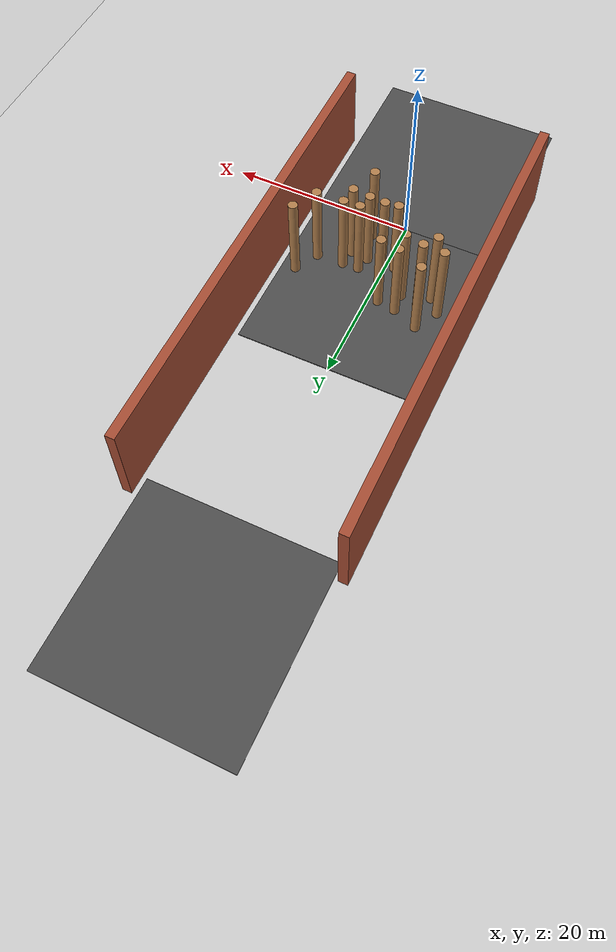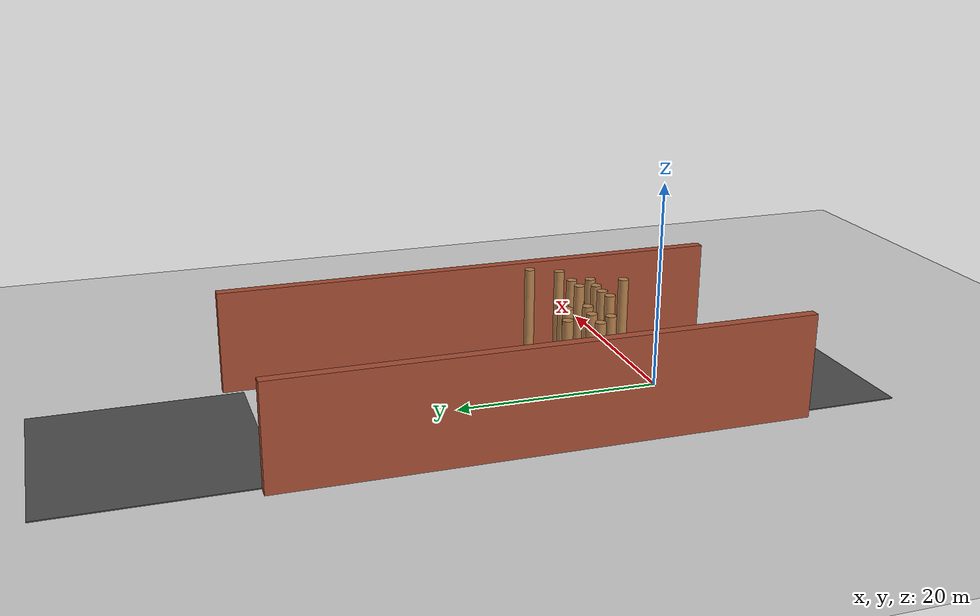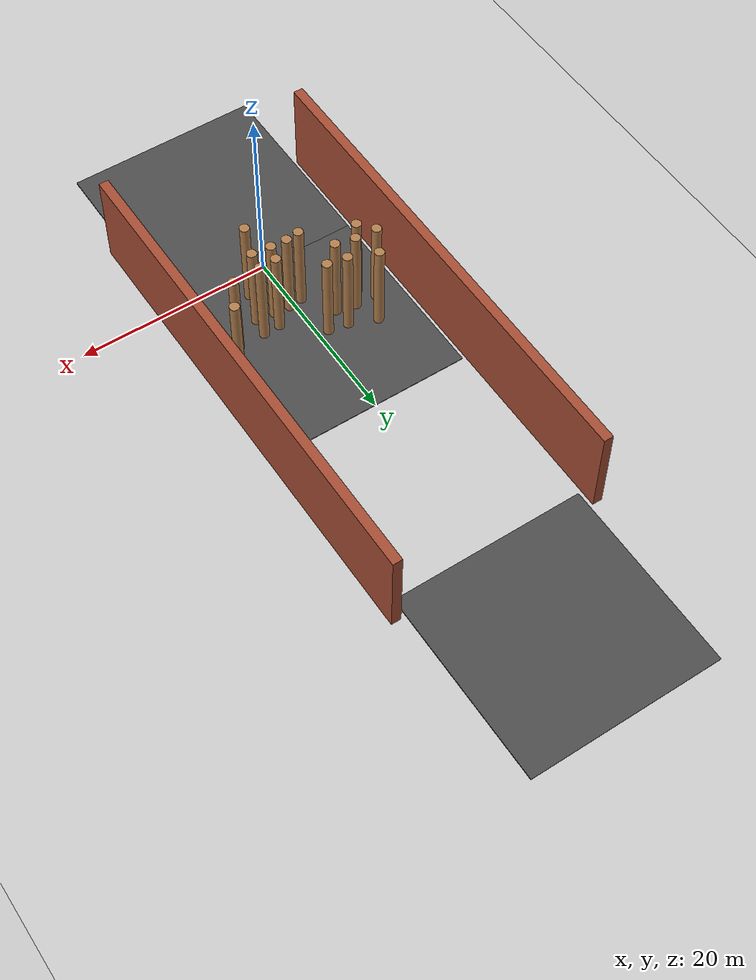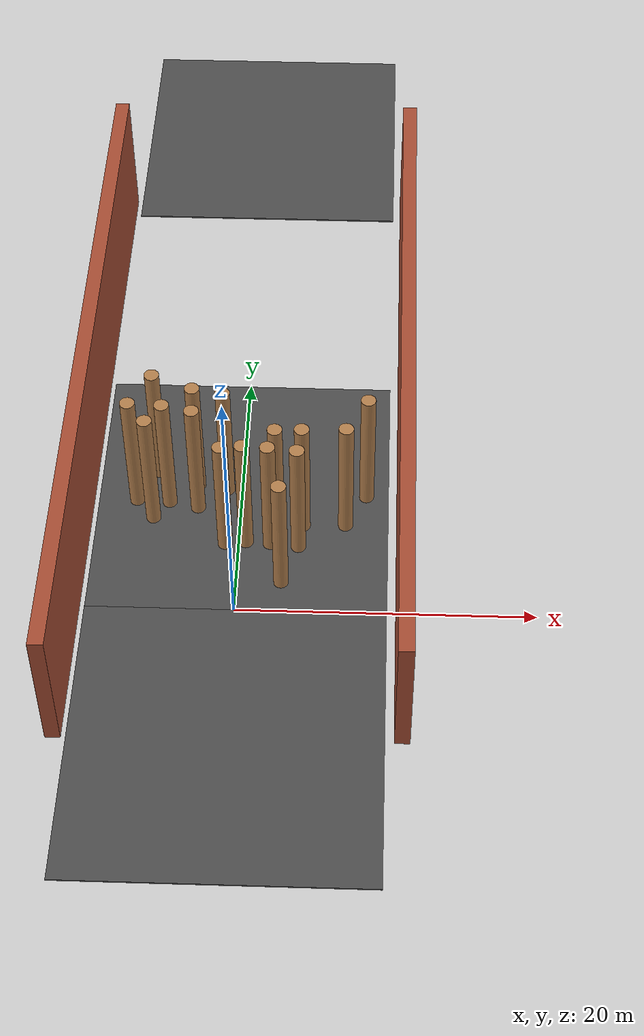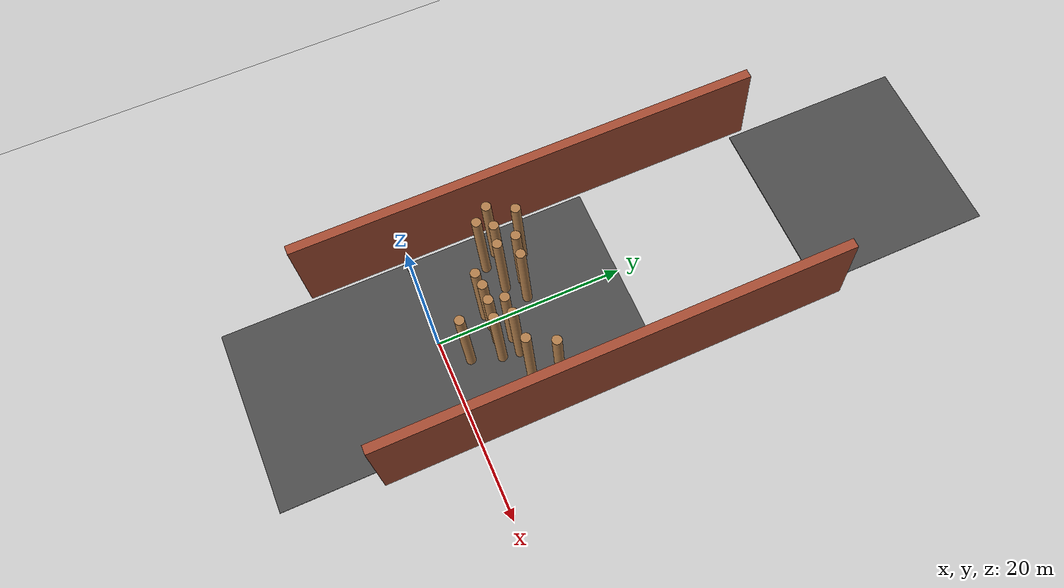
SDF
<sdf version="1.6">
 <world name="default">
  <model name="ground_plane">
   <static>1</static>
   <link name="link">
    <collision name="collision">
     <geometry><plane><normal>0 0 1</normal><size>100 100</size></plane></geometry>
     <surface><friction><ode><mu>100</mu><mu2>50</mu2></ode></friction></surface>
    </collision>
    <visual name="visual">
     <cast_shadows>0</cast_shadows>
     <geometry><plane><normal>0 0 1</normal><size>100 100</size></plane></geometry>
     <material>
      <script><uri>file://media/materials/scripts/gazebo.material</uri><name>Gazebo/Grey</name></script>
     </material>
    </visual>
   </link>
  </model>
  <model name="asphalt_plane_1">
   <static>1</static>
   <link name="link">
    <collision name="collision"><geometry><box><size>20 20 0.1</size></box></geometry></collision>
    <visual name="visual">
     <cast_shadows>0</cast_shadows>
     <geometry><box><size>20 20 0.1</size></box></geometry>
     <material>
      <script>
       <uri>model://asphalt_plane/materials/scripts</uri>
       <uri>model://asphalt_plane/materials/textures</uri>
       <name>vrc/asphalt</name>
      </script>
     </material>
    </visual>
   </link>
   <pose>0.098004 9.97829 0 0 -0 0</pose>
  </model>
  <model name="asphalt_plane_3">
   <static>1</static>
   <link name="link">
    <collision name="collision"><geometry><box><size>20 20 0.1</size></box></geometry></collision>
    <visual name="visual">
     <cast_shadows>0</cast_shadows>
     <geometry><box><size>20 20 0.1</size></box></geometry>
     <material>
      <script>
       <uri>model://asphalt_plane/materials/scripts</uri>
       <uri>model://asphalt_plane/materials/textures</uri>
       <name>vrc/asphalt</name>
      </script>
     </material>
    </visual>
   </link>
   <pose>0.085062 -9.98607 0 0 -0 0</pose>
  </model>
  <model name="train_3">
   <link name="link_0_clone_0_clone_11">
    <pose>4.2784 -11.9007 0.043478 0 -0 0</pose>
    <inertial>
     <mass>1000</mass>
     <inertia><ixx>0.145833</ixx><ixy>0</ixy><ixz>0</ixz><iyy>0.145833</iyy><iyz>0</iyz><izz>0.125</izz></inertia>
    </inertial>
    <visual name="visual">
     <pose>0 0 4.5 0 -0 0</pose>
     <geometry><cylinder><radius>0.5</radius><length>10</length></cylinder></geometry>
     <material>
      <lighting>1</lighting>
      <script><uri>file://media/materials/scripts/gazebo.material</uri><name>Gazebo/WoodFloor</name></script>
      <ambient>0.3 0.3 0.3 1</ambient>
      <diffuse>0.7 0.7 0.7 1</diffuse>
      <specular>0.01 0.01 0.01 1</specular>
      <emissive>0 0 0 1</emissive>
      <shader type="vertex"><normal_map>__default__</normal_map></shader>
     </material>
    </visual>
    <collision name="collision">
     <pose>0 0 4.5 0 -0 0</pose>
     <geometry><cylinder><radius>0.5</radius><length>10</length></cylinder></geometry>
     <surface>
      <friction>
       <ode><mu>1</mu><mu2>1</mu2><fdir1>0 0 0</fdir1><slip1>0</slip1><slip2>0</slip2></ode>
       <torsional>
        <coefficient>1</coefficient>
        <patch_radius>0</patch_radius>
        <surface_radius>0</surface_radius>
        <use_patch_radius>1</use_patch_radius>
        <ode><slip>0</slip></ode>
       </torsional>
      </friction>
      <bounce><restitution_coefficient>0</restitution_coefficient><threshold>1e+06</threshold></bounce>
      <contact>
       <collide_without_contact>0</collide_without_contact>
       <collide_without_contact_bitmask>1</collide_without_contact_bitmask>
       <collide_bitmask>1</collide_bitmask>
       <ode>
        <soft_cfm>0</soft_cfm>
        <soft_erp>0.2</soft_erp>
        <kp>1e+13</kp>
        <kd>1</kd>
        <max_vel>0.01</max_vel>
        <min_depth>0</min_depth>
       </ode>
       <bullet>
        <split_impulse>1</split_impulse>
        <split_impulse_penetration_threshold>-0.01</split_impulse_penetration_threshold>
        <soft_cfm>0</soft_cfm>
        <soft_erp>0.2</soft_erp>
        <kp>1e+13</kp>
        <kd>1</kd>
       </bullet>
      </contact>
     </surface>
    </collision>
   </link>
   <link name="link_0_clone_0_clone_5_clone_1">
    <pose>5.55345 -7.0629 0.043478 0 -0 3e-06</pose>
    <inertial>
     <mass>1000</mass>
     <inertia><ixx>0.145833</ixx><ixy>0</ixy><ixz>0</ixz><iyy>0.145833</iyy><iyz>0</iyz><izz>0.125</izz></inertia>
    </inertial>
    <visual name="visual">
     <pose>0 0 4.5 0 -0 0</pose>
     <geometry><cylinder><radius>0.5</radius><length>10</length></cylinder></geometry>
     <material>
      <lighting>1</lighting>
      <script><uri>file://media/materials/scripts/gazebo.material</uri><name>Gazebo/WoodFloor</name></script>
      <ambient>0.3 0.3 0.3 1</ambient>
      <diffuse>0.7 0.7 0.7 1</diffuse>
      <specular>0.01 0.01 0.01 1</specular>
      <emissive>0 0 0 1</emissive>
      <shader type="vertex"><normal_map>__default__</normal_map></shader>
     </material>
    </visual>
    <collision name="collision">
     <pose>0 0 4.5 0 -0 0</pose>
     <geometry><cylinder><radius>0.5</radius><length>10</length></cylinder></geometry>
     <surface>
      <friction>
       <ode><mu>1</mu><mu2>1</mu2><fdir1>0 0 0</fdir1><slip1>0</slip1><slip2>0</slip2></ode>
       <torsional>
        <coefficient>1</coefficient>
        <patch_radius>0</patch_radius>
        <surface_radius>0</surface_radius>
        <use_patch_radius>1</use_patch_radius>
        <ode><slip>0</slip></ode>
       </torsional>
      </friction>
      <bounce><restitution_coefficient>0</restitution_coefficient><threshold>1e+06</threshold></bounce>
      <contact>
       <collide_without_contact>0</collide_without_contact>
       <collide_without_contact_bitmask>1</collide_without_contact_bitmask>
       <collide_bitmask>1</collide_bitmask>
       <ode>
        <soft_cfm>0</soft_cfm>
        <soft_erp>0.2</soft_erp>
        <kp>1e+13</kp>
        <kd>1</kd>
        <max_vel>0.01</max_vel>
        <min_depth>0</min_depth>
       </ode>
       <bullet>
        <split_impulse>1</split_impulse>
        <split_impulse_penetration_threshold>-0.01</split_impulse_penetration_threshold>
        <soft_cfm>0</soft_cfm>
        <soft_erp>0.2</soft_erp>
        <kp>1e+13</kp>
        <kd>1</kd>
       </bullet>
      </contact>
     </surface>
    </collision>
   </link>
   <link name="link_0_clone_0_clone_5_clone_19_clone_24">
    <pose>-5.97869 -5.13561 0.043478 0 -0 6e-06</pose>
    <inertial>
     <mass>1000</mass>
     <inertia><ixx>0.145833</ixx><ixy>0</ixy><ixz>0</ixz><iyy>0.145833</iyy><iyz>0</iyz><izz>0.125</izz></inertia>
    </inertial>
    <visual name="visual">
     <pose>0 0 4.5 0 -0 0</pose>
     <geometry><cylinder><radius>0.5</radius><length>10</length></cylinder></geometry>
     <material>
      <lighting>1</lighting>
      <script><uri>file://media/materials/scripts/gazebo.material</uri><name>Gazebo/WoodFloor</name></script>
      <ambient>0.3 0.3 0.3 1</ambient>
      <diffuse>0.7 0.7 0.7 1</diffuse>
      <specular>0.01 0.01 0.01 1</specular>
      <emissive>0 0 0 1</emissive>
      <shader type="vertex"><normal_map>__default__</normal_map></shader>
     </material>
    </visual>
    <collision name="collision">
     <pose>0 0 4.5 0 -0 0</pose>
     <geometry><cylinder><radius>0.5</radius><length>10</length></cylinder></geometry>
     <surface>
      <friction>
       <ode><mu>1</mu><mu2>1</mu2><fdir1>0 0 0</fdir1><slip1>0</slip1><slip2>0</slip2></ode>
       <torsional>
        <coefficient>1</coefficient>
        <patch_radius>0</patch_radius>
        <surface_radius>0</surface_radius>
        <use_patch_radius>1</use_patch_radius>
        <ode><slip>0</slip></ode>
       </torsional>
      </friction>
      <bounce><restitution_coefficient>0</restitution_coefficient><threshold>1e+06</threshold></bounce>
      <contact>
       <collide_without_contact>0</collide_without_contact>
       <collide_without_contact_bitmask>1</collide_without_contact_bitmask>
       <collide_bitmask>1</collide_bitmask>
       <ode>
        <soft_cfm>0</soft_cfm>
        <soft_erp>0.2</soft_erp>
        <kp>1e+13</kp>
        <kd>1</kd>
        <max_vel>0.01</max_vel>
        <min_depth>0</min_depth>
       </ode>
       <bullet>
        <split_impulse>1</split_impulse>
        <split_impulse_penetration_threshold>-0.01</split_impulse_penetration_threshold>
        <soft_cfm>0</soft_cfm>
        <soft_erp>0.2</soft_erp>
        <kp>1e+13</kp>
        <kd>1</kd>
       </bullet>
      </contact>
     </surface>
    </collision>
   </link>
   <link name="link_0_clone_0_clone_5_clone_19_clone_25">
    <pose>-4.61157 -2.58866 0.043478 0 -0 6e-06</pose>
    <inertial>
     <mass>1000</mass>
     <inertia><ixx>0.145833</ixx><ixy>0</ixy><ixz>0</ixz><iyy>0.145833</iyy><iyz>0</iyz><izz>0.125</izz></inertia>
    </inertial>
    <visual name="visual">
     <pose>0 0 4.5 0 -0 0</pose>
     <geometry><cylinder><radius>0.5</radius><length>10</length></cylinder></geometry>
     <material>
      <lighting>1</lighting>
      <script><uri>file://media/materials/scripts/gazebo.material</uri><name>Gazebo/WoodFloor</name></script>
      <ambient>0.3 0.3 0.3 1</ambient>
      <diffuse>0.7 0.7 0.7 1</diffuse>
      <specular>0.01 0.01 0.01 1</specular>
      <emissive>0 0 0 1</emissive>
      <shader type="vertex"><normal_map>__default__</normal_map></shader>
     </material>
    </visual>
    <collision name="collision">
     <pose>0 0 4.5 0 -0 0</pose>
     <geometry><cylinder><radius>0.5</radius><length>10</length></cylinder></geometry>
     <surface>
      <friction>
       <ode><mu>1</mu><mu2>1</mu2><fdir1>0 0 0</fdir1><slip1>0</slip1><slip2>0</slip2></ode>
       <torsional>
        <coefficient>1</coefficient>
        <patch_radius>0</patch_radius>
        <surface_radius>0</surface_radius>
        <use_patch_radius>1</use_patch_radius>
        <ode><slip>0</slip></ode>
       </torsional>
      </friction>
      <bounce><restitution_coefficient>0</restitution_coefficient><threshold>1e+06</threshold></bounce>
      <contact>
       <collide_without_contact>0</collide_without_contact>
       <collide_without_contact_bitmask>1</collide_without_contact_bitmask>
       <collide_bitmask>1</collide_bitmask>
       <ode>
        <soft_cfm>0</soft_cfm>
        <soft_erp>0.2</soft_erp>
        <kp>1e+13</kp>
        <kd>1</kd>
        <max_vel>0.01</max_vel>
        <min_depth>0</min_depth>
       </ode>
       <bullet>
        <split_impulse>1</split_impulse>
        <split_impulse_penetration_threshold>-0.01</split_impulse_penetration_threshold>
        <soft_cfm>0</soft_cfm>
        <soft_erp>0.2</soft_erp>
        <kp>1e+13</kp>
        <kd>1</kd>
       </bullet>
      </contact>
     </surface>
    </collision>
   </link>
   <link name="link_0_clone_0_clone_5_clone_19_clone_29">
    <pose>8.45499 -6.94527 0.043478 0 -0 6e-06</pose>
    <inertial>
     <mass>1000</mass>
     <inertia><ixx>0.145833</ixx><ixy>0</ixy><ixz>0</ixz><iyy>0.145833</iyy><iyz>0</iyz><izz>0.125</izz></inertia>
    </inertial>
    <visual name="visual">
     <pose>0 0 4.5 0 -0 0</pose>
     <geometry><cylinder><radius>0.5</radius><length>10</length></cylinder></geometry>
     <material>
      <lighting>1</lighting>
      <script><uri>file://media/materials/scripts/gazebo.material</uri><name>Gazebo/WoodFloor</name></script>
      <ambient>0.3 0.3 0.3 1</ambient>
      <diffuse>0.7 0.7 0.7 1</diffuse>
      <specular>0.01 0.01 0.01 1</specular>
      <emissive>0 0 0 1</emissive>
      <shader type="vertex"><normal_map>__default__</normal_map></shader>
     </material>
    </visual>
    <collision name="collision">
     <pose>0 0 4.5 0 -0 0</pose>
     <geometry><cylinder><radius>0.5</radius><length>10</length></cylinder></geometry>
     <surface>
      <friction>
       <ode><mu>1</mu><mu2>1</mu2><fdir1>0 0 0</fdir1><slip1>0</slip1><slip2>0</slip2></ode>
       <torsional>
        <coefficient>1</coefficient>
        <patch_radius>0</patch_radius>
        <surface_radius>0</surface_radius>
        <use_patch_radius>1</use_patch_radius>
        <ode><slip>0</slip></ode>
       </torsional>
      </friction>
      <bounce><restitution_coefficient>0</restitution_coefficient><threshold>1e+06</threshold></bounce>
      <contact>
       <collide_without_contact>0</collide_without_contact>
       <collide_without_contact_bitmask>1</collide_without_contact_bitmask>
       <collide_bitmask>1</collide_bitmask>
       <ode>
        <soft_cfm>0</soft_cfm>
        <soft_erp>0.2</soft_erp>
        <kp>1e+13</kp>
        <kd>1</kd>
        <max_vel>0.01</max_vel>
        <min_depth>0</min_depth>
       </ode>
       <bullet>
        <split_impulse>1</split_impulse>
        <split_impulse_penetration_threshold>-0.01</split_impulse_penetration_threshold>
        <soft_cfm>0</soft_cfm>
        <soft_erp>0.2</soft_erp>
        <kp>1e+13</kp>
        <kd>1</kd>
       </bullet>
      </contact>
     </surface>
    </collision>
   </link>
   <link name="link_0_clone_0_clone_5_clone_4">
    <pose>-4.72604 -6.65488 0.043478 0 -0 3e-06</pose>
    <inertial>
     <mass>1000</mass>
     <inertia><ixx>0.145833</ixx><ixy>0</ixy><ixz>0</ixz><iyy>0.145833</iyy><iyz>0</iyz><izz>0.125</izz></inertia>
    </inertial>
    <visual name="visual">
     <pose>0 0 4.5 0 -0 0</pose>
     <geometry><cylinder><radius>0.5</radius><length>10</length></cylinder></geometry>
     <material>
      <lighting>1</lighting>
      <script><uri>file://media/materials/scripts/gazebo.material</uri><name>Gazebo/WoodFloor</name></script>
      <ambient>0.3 0.3 0.3 1</ambient>
      <diffuse>0.7 0.7 0.7 1</diffuse>
      <specular>0.01 0.01 0.01 1</specular>
      <emissive>0 0 0 1</emissive>
      <shader type="vertex"><normal_map>__default__</normal_map></shader>
     </material>
    </visual>
    <collision name="collision">
     <pose>0 0 4.5 0 -0 0</pose>
     <geometry><cylinder><radius>0.5</radius><length>10</length></cylinder></geometry>
     <surface>
      <friction>
       <ode><mu>1</mu><mu2>1</mu2><fdir1>0 0 0</fdir1><slip1>0</slip1><slip2>0</slip2></ode>
       <torsional>
        <coefficient>1</coefficient>
        <patch_radius>0</patch_radius>
        <surface_radius>0</surface_radius>
        <use_patch_radius>1</use_patch_radius>
        <ode><slip>0</slip></ode>
       </torsional>
      </friction>
      <bounce><restitution_coefficient>0</restitution_coefficient><threshold>1e+06</threshold></bounce>
      <contact>
       <collide_without_contact>0</collide_without_contact>
       <collide_without_contact_bitmask>1</collide_without_contact_bitmask>
       <collide_bitmask>1</collide_bitmask>
       <ode>
        <soft_cfm>0</soft_cfm>
        <soft_erp>0.2</soft_erp>
        <kp>1e+13</kp>
        <kd>1</kd>
        <max_vel>0.01</max_vel>
        <min_depth>0</min_depth>
       </ode>
       <bullet>
        <split_impulse>1</split_impulse>
        <split_impulse_penetration_threshold>-0.01</split_impulse_penetration_threshold>
        <soft_cfm>0</soft_cfm>
        <soft_erp>0.2</soft_erp>
        <kp>1e+13</kp>
        <kd>1</kd>
       </bullet>
      </contact>
     </surface>
    </collision>
   </link>
   <link name="link_0_clone_0_clone_5_clone_6_clone">
    <pose>0.335435 -8.77026 0.043478 0 -0 6e-06</pose>
    <inertial>
     <mass>1000</mass>
     <inertia><ixx>0.145833</ixx><ixy>0</ixy><ixz>0</ixz><iyy>0.145833</iyy><iyz>0</iyz><izz>0.125</izz></inertia>
    </inertial>
    <visual name="visual">
     <pose>0 0 4.5 0 -0 0</pose>
     <geometry><cylinder><radius>0.5</radius><length>10</length></cylinder></geometry>
     <material>
      <lighting>1</lighting>
      <script><uri>file://media/materials/scripts/gazebo.material</uri><name>Gazebo/WoodFloor</name></script>
      <ambient>0.3 0.3 0.3 1</ambient>
      <diffuse>0.7 0.7 0.7 1</diffuse>
      <specular>0.01 0.01 0.01 1</specular>
      <emissive>0 0 0 1</emissive>
      <shader type="vertex"><normal_map>__default__</normal_map></shader>
     </material>
    </visual>
    <collision name="collision">
     <pose>0 0 4.5 0 -0 0</pose>
     <geometry><cylinder><radius>0.5</radius><length>10</length></cylinder></geometry>
     <surface>
      <friction>
       <ode><mu>1</mu><mu2>1</mu2><fdir1>0 0 0</fdir1><slip1>0</slip1><slip2>0</slip2></ode>
       <torsional>
        <coefficient>1</coefficient>
        <patch_radius>0</patch_radius>
        <surface_radius>0</surface_radius>
        <use_patch_radius>1</use_patch_radius>
        <ode><slip>0</slip></ode>
       </torsional>
      </friction>
      <bounce><restitution_coefficient>0</restitution_coefficient><threshold>1e+06</threshold></bounce>
      <contact>
       <collide_without_contact>0</collide_without_contact>
       <collide_without_contact_bitmask>1</collide_without_contact_bitmask>
       <collide_bitmask>1</collide_bitmask>
       <ode>
        <soft_cfm>0</soft_cfm>
        <soft_erp>0.2</soft_erp>
        <kp>1e+13</kp>
        <kd>1</kd>
        <max_vel>0.01</max_vel>
        <min_depth>0</min_depth>
       </ode>
       <bullet>
        <split_impulse>1</split_impulse>
        <split_impulse_penetration_threshold>-0.01</split_impulse_penetration_threshold>
        <soft_cfm>0</soft_cfm>
        <soft_erp>0.2</soft_erp>
        <kp>1e+13</kp>
        <kd>1</kd>
       </bullet>
      </contact>
     </surface>
    </collision>
   </link>
   <link name="link_0_clone_0_clone_5_clone_6_clone_0">
    <pose>1.74137 -8.59396 0.043478 0 -0 6e-06</pose>
    <inertial>
     <mass>1000</mass>
     <inertia><ixx>0.145833</ixx><ixy>0</ixy><ixz>0</ixz><iyy>0.145833</iyy><iyz>0</iyz><izz>0.125</izz></inertia>
    </inertial>
    <visual name="visual">
     <pose>0 0 4.5 0 -0 0</pose>
     <geometry><cylinder><radius>0.5</radius><length>10</length></cylinder></geometry>
     <material>
      <lighting>1</lighting>
      <script><uri>file://media/materials/scripts/gazebo.material</uri><name>Gazebo/WoodFloor</name></script>
      <ambient>0.3 0.3 0.3 1</ambient>
      <diffuse>0.7 0.7 0.7 1</diffuse>
      <specular>0.01 0.01 0.01 1</specular>
      <emissive>0 0 0 1</emissive>
      <shader type="vertex"><normal_map>__default__</normal_map></shader>
     </material>
    </visual>
    <collision name="collision">
     <pose>0 0 4.5 0 -0 0</pose>
     <geometry><cylinder><radius>0.5</radius><length>10</length></cylinder></geometry>
     <surface>
      <friction>
       <ode><mu>1</mu><mu2>1</mu2><fdir1>0 0 0</fdir1><slip1>0</slip1><slip2>0</slip2></ode>
       <torsional>
        <coefficient>1</coefficient>
        <patch_radius>0</patch_radius>
        <surface_radius>0</surface_radius>
        <use_patch_radius>1</use_patch_radius>
        <ode><slip>0</slip></ode>
       </torsional>
      </friction>
      <bounce><restitution_coefficient>0</restitution_coefficient><threshold>1e+06</threshold></bounce>
      <contact>
       <collide_without_contact>0</collide_without_contact>
       <collide_without_contact_bitmask>1</collide_without_contact_bitmask>
       <collide_bitmask>1</collide_bitmask>
       <ode>
        <soft_cfm>0</soft_cfm>
        <soft_erp>0.2</soft_erp>
        <kp>1e+13</kp>
        <kd>1</kd>
        <max_vel>0.01</max_vel>
        <min_depth>0</min_depth>
       </ode>
       <bullet>
        <split_impulse>1</split_impulse>
        <split_impulse_penetration_threshold>-0.01</split_impulse_penetration_threshold>
        <soft_cfm>0</soft_cfm>
        <soft_erp>0.2</soft_erp>
        <kp>1e+13</kp>
        <kd>1</kd>
       </bullet>
      </contact>
     </surface>
    </collision>
   </link>
   <link name="link_0_clone_0_clone_5_clone_6_clone_1">
    <pose>3.39974 -8.67551 0.043478 0 -0 6e-06</pose>
    <inertial>
     <mass>1000</mass>
     <inertia><ixx>0.145833</ixx><ixy>0</ixy><ixz>0</ixz><iyy>0.145833</iyy><iyz>0</iyz><izz>0.125</izz></inertia>
    </inertial>
    <visual name="visual">
     <pose>0 0 4.5 0 -0 0</pose>
     <geometry><cylinder><radius>0.5</radius><length>10</length></cylinder></geometry>
     <material>
      <lighting>1</lighting>
      <script><uri>file://media/materials/scripts/gazebo.material</uri><name>Gazebo/WoodFloor</name></script>
      <ambient>0.3 0.3 0.3 1</ambient>
      <diffuse>0.7 0.7 0.7 1</diffuse>
      <specular>0.01 0.01 0.01 1</specular>
      <emissive>0 0 0 1</emissive>
      <shader type="vertex"><normal_map>__default__</normal_map></shader>
     </material>
    </visual>
    <collision name="collision">
     <pose>0 0 4.5 0 -0 0</pose>
     <geometry><cylinder><radius>0.5</radius><length>10</length></cylinder></geometry>
     <surface>
      <friction>
       <ode><mu>1</mu><mu2>1</mu2><fdir1>0 0 0</fdir1><slip1>0</slip1><slip2>0</slip2></ode>
       <torsional>
        <coefficient>1</coefficient>
        <patch_radius>0</patch_radius>
        <surface_radius>0</surface_radius>
        <use_patch_radius>1</use_patch_radius>
        <ode><slip>0</slip></ode>
       </torsional>
      </friction>
      <bounce><restitution_coefficient>0</restitution_coefficient><threshold>1e+06</threshold></bounce>
      <contact>
       <collide_without_contact>0</collide_without_contact>
       <collide_without_contact_bitmask>1</collide_without_contact_bitmask>
       <collide_bitmask>1</collide_bitmask>
       <ode>
        <soft_cfm>0</soft_cfm>
        <soft_erp>0.2</soft_erp>
        <kp>1e+13</kp>
        <kd>1</kd>
        <max_vel>0.01</max_vel>
        <min_depth>0</min_depth>
       </ode>
       <bullet>
        <split_impulse>1</split_impulse>
        <split_impulse_penetration_threshold>-0.01</split_impulse_penetration_threshold>
        <soft_cfm>0</soft_cfm>
        <soft_erp>0.2</soft_erp>
        <kp>1e+13</kp>
        <kd>1</kd>
       </bullet>
      </contact>
     </surface>
    </collision>
   </link>
   <link name="link_0_clone_0_clone_5_clone_6_clone_10">
    <pose>9.85089 -4.40278 0.043478 0 -0 6e-06</pose>
    <inertial>
     <mass>1000</mass>
     <inertia><ixx>0.145833</ixx><ixy>0</ixy><ixz>0</ixz><iyy>0.145833</iyy><iyz>0</iyz><izz>0.125</izz></inertia>
    </inertial>
    <visual name="visual">
     <pose>0 0 4.5 0 -0 0</pose>
     <geometry><cylinder><radius>0.5</radius><length>10</length></cylinder></geometry>
     <material>
      <lighting>1</lighting>
      <script><uri>file://media/materials/scripts/gazebo.material</uri><name>Gazebo/WoodFloor</name></script>
      <ambient>0.3 0.3 0.3 1</ambient>
      <diffuse>0.7 0.7 0.7 1</diffuse>
      <specular>0.01 0.01 0.01 1</specular>
      <emissive>0 0 0 1</emissive>
      <shader type="vertex"><normal_map>__default__</normal_map></shader>
     </material>
    </visual>
    <collision name="collision">
     <pose>0 0 4.5 0 -0 0</pose>
     <geometry><cylinder><radius>0.5</radius><length>10</length></cylinder></geometry>
     <surface>
      <friction>
       <ode><mu>1</mu><mu2>1</mu2><fdir1>0 0 0</fdir1><slip1>0</slip1><slip2>0</slip2></ode>
       <torsional>
        <coefficient>1</coefficient>
        <patch_radius>0</patch_radius>
        <surface_radius>0</surface_radius>
        <use_patch_radius>1</use_patch_radius>
        <ode><slip>0</slip></ode>
       </torsional>
      </friction>
      <bounce><restitution_coefficient>0</restitution_coefficient><threshold>1e+06</threshold></bounce>
      <contact>
       <collide_without_contact>0</collide_without_contact>
       <collide_without_contact_bitmask>1</collide_without_contact_bitmask>
       <collide_bitmask>1</collide_bitmask>
       <ode>
        <soft_cfm>0</soft_cfm>
        <soft_erp>0.2</soft_erp>
        <kp>1e+13</kp>
        <kd>1</kd>
        <max_vel>0.01</max_vel>
        <min_depth>0</min_depth>
       </ode>
       <bullet>
        <split_impulse>1</split_impulse>
        <split_impulse_penetration_threshold>-0.01</split_impulse_penetration_threshold>
        <soft_cfm>0</soft_cfm>
        <soft_erp>0.2</soft_erp>
        <kp>1e+13</kp>
        <kd>1</kd>
       </bullet>
      </contact>
     </surface>
    </collision>
   </link>
   <link name="link_0_clone_0_clone_5_clone_6_clone_2">
    <pose>5.31211 -8.8864 0.043478 0 -0 6e-06</pose>
    <inertial>
     <mass>1000</mass>
     <inertia><ixx>0.145833</ixx><ixy>0</ixy><ixz>0</ixz><iyy>0.145833</iyy><iyz>0</iyz><izz>0.125</izz></inertia>
    </inertial>
    <visual name="visual">
     <pose>0 0 4.5 0 -0 0</pose>
     <geometry><cylinder><radius>0.5</radius><length>10</length></cylinder></geometry>
     <material>
      <lighting>1</lighting>
      <script><uri>file://media/materials/scripts/gazebo.material</uri><name>Gazebo/WoodFloor</name></script>
      <ambient>0.3 0.3 0.3 1</ambient>
      <diffuse>0.7 0.7 0.7 1</diffuse>
      <specular>0.01 0.01 0.01 1</specular>
      <emissive>0 0 0 1</emissive>
      <shader type="vertex"><normal_map>__default__</normal_map></shader>
     </material>
    </visual>
    <collision name="collision">
     <pose>0 0 4.5 0 -0 0</pose>
     <geometry><cylinder><radius>0.5</radius><length>10</length></cylinder></geometry>
     <surface>
      <friction>
       <ode><mu>1</mu><mu2>1</mu2><fdir1>0 0 0</fdir1><slip1>0</slip1><slip2>0</slip2></ode>
       <torsional>
        <coefficient>1</coefficient>
        <patch_radius>0</patch_radius>
        <surface_radius>0</surface_radius>
        <use_patch_radius>1</use_patch_radius>
        <ode><slip>0</slip></ode>
       </torsional>
      </friction>
      <bounce><restitution_coefficient>0</restitution_coefficient><threshold>1e+06</threshold></bounce>
      <contact>
       <collide_without_contact>0</collide_without_contact>
       <collide_without_contact_bitmask>1</collide_without_contact_bitmask>
       <collide_bitmask>1</collide_bitmask>
       <ode>
        <soft_cfm>0</soft_cfm>
        <soft_erp>0.2</soft_erp>
        <kp>1e+13</kp>
        <kd>1</kd>
        <max_vel>0.01</max_vel>
        <min_depth>0</min_depth>
       </ode>
       <bullet>
        <split_impulse>1</split_impulse>
        <split_impulse_penetration_threshold>-0.01</split_impulse_penetration_threshold>
        <soft_cfm>0</soft_cfm>
        <soft_erp>0.2</soft_erp>
        <kp>1e+13</kp>
        <kd>1</kd>
       </bullet>
      </contact>
     </surface>
    </collision>
   </link>
   <link name="link_0_clone_0_clone_5_clone_6_clone_3">
    <pose>3.79882 -7.14652 0.043478 0 -0 6e-06</pose>
    <inertial>
     <mass>1000</mass>
     <inertia><ixx>0.145833</ixx><ixy>0</ixy><ixz>0</ixz><iyy>0.145833</iyy><iyz>0</iyz><izz>0.125</izz></inertia>
    </inertial>
    <visual name="visual">
     <pose>0 0 4.5 0 -0 0</pose>
     <geometry><cylinder><radius>0.5</radius><length>10</length></cylinder></geometry>
     <material>
      <lighting>1</lighting>
      <script><uri>file://media/materials/scripts/gazebo.material</uri><name>Gazebo/WoodFloor</name></script>
      <ambient>0.3 0.3 0.3 1</ambient>
      <diffuse>0.7 0.7 0.7 1</diffuse>
      <specular>0.01 0.01 0.01 1</specular>
      <emissive>0 0 0 1</emissive>
      <shader type="vertex"><normal_map>__default__</normal_map></shader>
     </material>
    </visual>
    <collision name="collision">
     <pose>0 0 4.5 0 -0 0</pose>
     <geometry><cylinder><radius>0.5</radius><length>10</length></cylinder></geometry>
     <surface>
      <friction>
       <ode><mu>1</mu><mu2>1</mu2><fdir1>0 0 0</fdir1><slip1>0</slip1><slip2>0</slip2></ode>
       <torsional>
        <coefficient>1</coefficient>
        <patch_radius>0</patch_radius>
        <surface_radius>0</surface_radius>
        <use_patch_radius>1</use_patch_radius>
        <ode><slip>0</slip></ode>
       </torsional>
      </friction>
      <bounce><restitution_coefficient>0</restitution_coefficient><threshold>1e+06</threshold></bounce>
      <contact>
       <collide_without_contact>0</collide_without_contact>
       <collide_without_contact_bitmask>1</collide_without_contact_bitmask>
       <collide_bitmask>1</collide_bitmask>
       <ode>
        <soft_cfm>0</soft_cfm>
        <soft_erp>0.2</soft_erp>
        <kp>1e+13</kp>
        <kd>1</kd>
        <max_vel>0.01</max_vel>
        <min_depth>0</min_depth>
       </ode>
       <bullet>
        <split_impulse>1</split_impulse>
        <split_impulse_penetration_threshold>-0.01</split_impulse_penetration_threshold>
        <soft_cfm>0</soft_cfm>
        <soft_erp>0.2</soft_erp>
        <kp>1e+13</kp>
        <kd>1</kd>
       </bullet>
      </contact>
     </surface>
    </collision>
   </link>
   <link name="link_0_clone_0_clone_5_clone_6_clone_5">
    <pose>-1.72604 -5.68714 0.043478 0 -0 6e-06</pose>
    <inertial>
     <mass>1000</mass>
     <inertia><ixx>0.145833</ixx><ixy>0</ixy><ixz>0</ixz><iyy>0.145833</iyy><iyz>0</iyz><izz>0.125</izz></inertia>
    </inertial>
    <visual name="visual">
     <pose>0 0 4.5 0 -0 0</pose>
     <geometry><cylinder><radius>0.5</radius><length>10</length></cylinder></geometry>
     <material>
      <lighting>1</lighting>
      <script><uri>file://media/materials/scripts/gazebo.material</uri><name>Gazebo/WoodFloor</name></script>
      <ambient>0.3 0.3 0.3 1</ambient>
      <diffuse>0.7 0.7 0.7 1</diffuse>
      <specular>0.01 0.01 0.01 1</specular>
      <emissive>0 0 0 1</emissive>
      <shader type="vertex"><normal_map>__default__</normal_map></shader>
     </material>
    </visual>
    <collision name="collision">
     <pose>0 0 4.5 0 -0 0</pose>
     <geometry><cylinder><radius>0.5</radius><length>10</length></cylinder></geometry>
     <surface>
      <friction>
       <ode><mu>1</mu><mu2>1</mu2><fdir1>0 0 0</fdir1><slip1>0</slip1><slip2>0</slip2></ode>
       <torsional>
        <coefficient>1</coefficient>
        <patch_radius>0</patch_radius>
        <surface_radius>0</surface_radius>
        <use_patch_radius>1</use_patch_radius>
        <ode><slip>0</slip></ode>
       </torsional>
      </friction>
      <bounce><restitution_coefficient>0</restitution_coefficient><threshold>1e+06</threshold></bounce>
      <contact>
       <collide_without_contact>0</collide_without_contact>
       <collide_without_contact_bitmask>1</collide_without_contact_bitmask>
       <collide_bitmask>1</collide_bitmask>
       <ode>
        <soft_cfm>0</soft_cfm>
        <soft_erp>0.2</soft_erp>
        <kp>1e+13</kp>
        <kd>1</kd>
        <max_vel>0.01</max_vel>
        <min_depth>0</min_depth>
       </ode>
       <bullet>
        <split_impulse>1</split_impulse>
        <split_impulse_penetration_threshold>-0.01</split_impulse_penetration_threshold>
        <soft_cfm>0</soft_cfm>
        <soft_erp>0.2</soft_erp>
        <kp>1e+13</kp>
        <kd>1</kd>
       </bullet>
      </contact>
     </surface>
    </collision>
   </link>
   <link name="link_0_clone_0_clone_5_clone_6_clone_6">
    <pose>-1.84506 -3.70574 0.043478 0 -0 6e-06</pose>
    <inertial>
     <mass>1000</mass>
     <inertia><ixx>0.145833</ixx><ixy>0</ixy><ixz>0</ixz><iyy>0.145833</iyy><iyz>0</iyz><izz>0.125</izz></inertia>
    </inertial>
    <visual name="visual">
     <pose>0 0 4.5 0 -0 0</pose>
     <geometry><cylinder><radius>0.5</radius><length>10</length></cylinder></geometry>
     <material>
      <lighting>1</lighting>
      <script><uri>file://media/materials/scripts/gazebo.material</uri><name>Gazebo/WoodFloor</name></script>
      <ambient>0.3 0.3 0.3 1</ambient>
      <diffuse>0.7 0.7 0.7 1</diffuse>
      <specular>0.01 0.01 0.01 1</specular>
      <emissive>0 0 0 1</emissive>
      <shader type="vertex"><normal_map>__default__</normal_map></shader>
     </material>
    </visual>
    <collision name="collision">
     <pose>0 0 4.5 0 -0 0</pose>
     <geometry><cylinder><radius>0.5</radius><length>10</length></cylinder></geometry>
     <surface>
      <friction>
       <ode><mu>1</mu><mu2>1</mu2><fdir1>0 0 0</fdir1><slip1>0</slip1><slip2>0</slip2></ode>
       <torsional>
        <coefficient>1</coefficient>
        <patch_radius>0</patch_radius>
        <surface_radius>0</surface_radius>
        <use_patch_radius>1</use_patch_radius>
        <ode><slip>0</slip></ode>
       </torsional>
      </friction>
      <bounce><restitution_coefficient>0</restitution_coefficient><threshold>1e+06</threshold></bounce>
      <contact>
       <collide_without_contact>0</collide_without_contact>
       <collide_without_contact_bitmask>1</collide_without_contact_bitmask>
       <collide_bitmask>1</collide_bitmask>
       <ode>
        <soft_cfm>0</soft_cfm>
        <soft_erp>0.2</soft_erp>
        <kp>1e+13</kp>
        <kd>1</kd>
        <max_vel>0.01</max_vel>
        <min_depth>0</min_depth>
       </ode>
       <bullet>
        <split_impulse>1</split_impulse>
        <split_impulse_penetration_threshold>-0.01</split_impulse_penetration_threshold>
        <soft_cfm>0</soft_cfm>
        <soft_erp>0.2</soft_erp>
        <kp>1e+13</kp>
        <kd>1</kd>
       </bullet>
      </contact>
     </surface>
    </collision>
   </link>
   <link name="link_0_clone_0_clone_5_clone_6_clone_8">
    <pose>-3.72604 -5.24681 0.043478 0 -0 6e-06</pose>
    <inertial>
     <mass>1000</mass>
     <inertia><ixx>0.145833</ixx><ixy>0</ixy><ixz>0</ixz><iyy>0.145833</iyy><iyz>0</iyz><izz>0.125</izz></inertia>
    </inertial>
    <visual name="visual">
     <pose>0 0 4.5 0 -0 0</pose>
     <geometry><cylinder><radius>0.5</radius><length>10</length></cylinder></geometry>
     <material>
      <lighting>1</lighting>
      <script><uri>file://media/materials/scripts/gazebo.material</uri><name>Gazebo/WoodFloor</name></script>
      <ambient>0.3 0.3 0.3 1</ambient>
      <diffuse>0.7 0.7 0.7 1</diffuse>
      <specular>0.01 0.01 0.01 1</specular>
      <emissive>0 0 0 1</emissive>
      <shader type="vertex"><normal_map>__default__</normal_map></shader>
     </material>
    </visual>
    <collision name="collision">
     <pose>0 0 4.5 0 -0 0</pose>
     <geometry><cylinder><radius>0.5</radius><length>10</length></cylinder></geometry>
     <surface>
      <friction>
       <ode><mu>1</mu><mu2>1</mu2><fdir1>0 0 0</fdir1><slip1>0</slip1><slip2>0</slip2></ode>
       <torsional>
        <coefficient>1</coefficient>
        <patch_radius>0</patch_radius>
        <surface_radius>0</surface_radius>
        <use_patch_radius>1</use_patch_radius>
        <ode><slip>0</slip></ode>
       </torsional>
      </friction>
      <bounce><restitution_coefficient>0</restitution_coefficient><threshold>1e+06</threshold></bounce>
      <contact>
       <collide_without_contact>0</collide_without_contact>
       <collide_without_contact_bitmask>1</collide_without_contact_bitmask>
       <collide_bitmask>1</collide_bitmask>
       <ode>
        <soft_cfm>0</soft_cfm>
        <soft_erp>0.2</soft_erp>
        <kp>1e+13</kp>
        <kd>1</kd>
        <max_vel>0.01</max_vel>
        <min_depth>0</min_depth>
       </ode>
       <bullet>
        <split_impulse>1</split_impulse>
        <split_impulse_penetration_threshold>-0.01</split_impulse_penetration_threshold>
        <soft_cfm>0</soft_cfm>
        <soft_erp>0.2</soft_erp>
        <kp>1e+13</kp>
        <kd>1</kd>
       </bullet>
      </contact>
     </surface>
    </collision>
   </link>
   <link name="link_0_clone_0_clone_5_clone_6_clone_9">
    <pose>0.193758 -4.04681 0.043478 0 -0 6e-06</pose>
    <inertial>
     <mass>1000</mass>
     <inertia><ixx>0.145833</ixx><ixy>0</ixy><ixz>0</ixz><iyy>0.145833</iyy><iyz>0</iyz><izz>0.125</izz></inertia>
    </inertial>
    <visual name="visual">
     <pose>0 0 4.5 0 -0 0</pose>
     <geometry><cylinder><radius>0.5</radius><length>10</length></cylinder></geometry>
     <material>
      <lighting>1</lighting>
      <script><uri>file://media/materials/scripts/gazebo.material</uri><name>Gazebo/WoodFloor</name></script>
      <ambient>0.3 0.3 0.3 1</ambient>
      <diffuse>0.7 0.7 0.7 1</diffuse>
      <specular>0.01 0.01 0.01 1</specular>
      <emissive>0 0 0 1</emissive>
      <shader type="vertex"><normal_map>__default__</normal_map></shader>
     </material>
    </visual>
    <collision name="collision">
     <pose>0 0 4.5 0 -0 0</pose>
     <geometry><cylinder><radius>0.5</radius><length>10</length></cylinder></geometry>
     <surface>
      <friction>
       <ode><mu>1</mu><mu2>1</mu2><fdir1>0 0 0</fdir1><slip1>0</slip1><slip2>0</slip2></ode>
       <torsional>
        <coefficient>1</coefficient>
        <patch_radius>0</patch_radius>
        <surface_radius>0</surface_radius>
        <use_patch_radius>1</use_patch_radius>
        <ode><slip>0</slip></ode>
       </torsional>
      </friction>
      <bounce><restitution_coefficient>0</restitution_coefficient><threshold>1e+06</threshold></bounce>
      <contact>
       <collide_without_contact>0</collide_without_contact>
       <collide_without_contact_bitmask>1</collide_without_contact_bitmask>
       <collide_bitmask>1</collide_bitmask>
       <ode>
        <soft_cfm>0</soft_cfm>
        <soft_erp>0.2</soft_erp>
        <kp>1e+13</kp>
        <kd>1</kd>
        <max_vel>0.01</max_vel>
        <min_depth>0</min_depth>
       </ode>
       <bullet>
        <split_impulse>1</split_impulse>
        <split_impulse_penetration_threshold>-0.01</split_impulse_penetration_threshold>
        <soft_cfm>0</soft_cfm>
        <soft_erp>0.2</soft_erp>
        <kp>1e+13</kp>
        <kd>1</kd>
       </bullet>
      </contact>
     </surface>
    </collision>
   </link>
   <static>1</static>
   <pose>-1.27394 14.2468 0.506522 0 0 -3e-06</pose>
  </model>
  <model name="walls">
   <link name="link_0_clone">
    <pose>-10.7701 14.8158 5 0 -0 0</pose>
    <inertial>
     <mass>10000</mass>
     <inertia>
      <ixx>0.166667</ixx>
      <ixy>0</ixy>
      <ixz>0</ixz>
      <iyy>0.166667</iyy>
      <iyz>0</iyz>
      <izz>0.166667</izz>
     </inertia>
     <pose>0 0 5 0 -0 0</pose>
    </inertial>
    <visual name="visual">
     <geometry><box><size>1 50 10</size></box></geometry>
     <material>
      <lighting>1</lighting>
      <script><uri>file://media/materials/scripts/gazebo.material</uri><name>Gazebo/Bricks</name></script>
      <ambient>0.3 0.3 0.3 1</ambient>
      <diffuse>0.7 0.7 0.7 1</diffuse>
      <specular>0.01 0.01 0.01 1</specular>
      <emissive>0 0 0 1</emissive>
      <shader type="vertex"><normal_map>__default__</normal_map></shader>
     </material>
    </visual>
    <collision name="collision">
     <geometry><box><size>1 50 10</size></box></geometry>
     <surface>
      <friction>
       <ode><mu>1</mu><mu2>1</mu2><fdir1>0 0 0</fdir1><slip1>0</slip1><slip2>0</slip2></ode>
       <torsional>
        <coefficient>1</coefficient>
        <patch_radius>0</patch_radius>
        <surface_radius>0</surface_radius>
        <use_patch_radius>1</use_patch_radius>
        <ode><slip>0</slip></ode>
       </torsional>
      </friction>
      <bounce><restitution_coefficient>0</restitution_coefficient><threshold>1e+06</threshold></bounce>
      <contact>
       <collide_without_contact>0</collide_without_contact>
       <collide_without_contact_bitmask>1</collide_without_contact_bitmask>
       <collide_bitmask>1</collide_bitmask>
       <ode>
        <soft_cfm>0</soft_cfm>
        <soft_erp>0.2</soft_erp>
        <kp>1e+13</kp>
        <kd>1</kd>
        <max_vel>0.01</max_vel>
        <min_depth>0</min_depth>
       </ode>
       <bullet>
        <split_impulse>1</split_impulse>
        <split_impulse_penetration_threshold>-0.01</split_impulse_penetration_threshold>
        <soft_cfm>0</soft_cfm>
        <soft_erp>0.2</soft_erp>
        <kp>1e+13</kp>
        <kd>1</kd>
       </bullet>
      </contact>
     </surface>
    </collision>
   </link>
   <link name="link_0_clone_clone">
    <pose>11.1264 15.0454 5 0 -0 0</pose>
    <inertial>
     <mass>10000</mass>
     <inertia>
      <ixx>0.166667</ixx>
      <ixy>0</ixy>
      <ixz>0</ixz>
      <iyy>0.166667</iyy>
      <iyz>0</iyz>
      <izz>0.166667</izz>
     </inertia>
     <pose>0 0 5 0 -0 0</pose>
    </inertial>
    <visual name="visual">
     <geometry><box><size>1 50 10</size></box></geometry>
     <material>
      <lighting>1</lighting>
      <script><uri>file://media/materials/scripts/gazebo.material</uri><name>Gazebo/Bricks</name></script>
      <ambient>0.3 0.3 0.3 1</ambient>
      <diffuse>0.7 0.7 0.7 1</diffuse>
      <specular>0.01 0.01 0.01 1</specular>
      <emissive>0 0 0 1</emissive>
      <shader type="vertex"><normal_map>__default__</normal_map></shader>
     </material>
    </visual>
    <collision name="collision">
     <geometry><box><size>1 50 10</size></box></geometry>
     <surface>
      <friction>
       <ode><mu>1</mu><mu2>1</mu2><fdir1>0 0 0</fdir1><slip1>0</slip1><slip2>0</slip2></ode>
       <torsional>
        <coefficient>1</coefficient>
        <patch_radius>0</patch_radius>
        <surface_radius>0</surface_radius>
        <use_patch_radius>1</use_patch_radius>
        <ode><slip>0</slip></ode>
       </torsional>
      </friction>
      <bounce><restitution_coefficient>0</restitution_coefficient><threshold>1e+06</threshold></bounce>
      <contact>
       <collide_without_contact>0</collide_without_contact>
       <collide_without_contact_bitmask>1</collide_without_contact_bitmask>
       <collide_bitmask>1</collide_bitmask>
       <ode>
        <soft_cfm>0</soft_cfm>
        <soft_erp>0.2</soft_erp>
        <kp>1e+13</kp>
        <kd>1</kd>
        <max_vel>0.01</max_vel>
        <min_depth>0</min_depth>
       </ode>
       <bullet>
        <split_impulse>1</split_impulse>
        <split_impulse_penetration_threshold>-0.01</split_impulse_penetration_threshold>
        <soft_cfm>0</soft_cfm>
        <soft_erp>0.2</soft_erp>
        <kp>1e+13</kp>
        <kd>1</kd>
       </bullet>
      </contact>
     </surface>
    </collision>
   </link>
   <static>1</static>
   <pose>0.0466 0.0221 0 0 -0 0</pose>
  </model>
  <model name="asphalt_plane">
   <link name="link">
    <inertial>
     <mass>1</mass>
     <inertia><ixx>1</ixx><ixy>0</ixy><ixz>0</ixz><iyy>1</iyy><iyz>0</iyz><izz>1</izz></inertia>
    </inertial>
    <visual name="visual">
     <cast_shadows>0</cast_shadows>
     <geometry><box><size>20 20 0.1</size></box></geometry>
     <material>
      <script>
       <uri>model://asphalt_plane/materials/scripts</uri>
       <uri>model://asphalt_plane/materials/textures</uri>
       <name>vrc/asphalt</name>
      </script>
      <ambient>0.5 0.5 0.5 1</ambient>
      <diffuse>0.5 0.5 0.5 1</diffuse>
      <specular>0.2 0.2 0.2 1</specular>
      <emissive>0 0 0 1</emissive>
      <shader type="vertex"><normal_map>__default__</normal_map></shader>
     </material>
    </visual>
    <collision name="collision">
     <geometry><box><size>20 20 0.1</size></box></geometry>
     <surface>
      <friction>
       <ode><mu>1</mu><mu2>1</mu2><fdir1>0 0 0</fdir1><slip1>0</slip1><slip2>0</slip2></ode>
       <torsional>
        <coefficient>1</coefficient>
        <patch_radius>0</patch_radius>
        <surface_radius>0</surface_radius>
        <use_patch_radius>1</use_patch_radius>
        <ode><slip>0</slip></ode>
       </torsional>
      </friction>
      <bounce><restitution_coefficient>0</restitution_coefficient><threshold>1e+06</threshold></bounce>
      <contact>
       <collide_without_contact>0</collide_without_contact>
       <collide_without_contact_bitmask>1</collide_without_contact_bitmask>
       <collide_bitmask>1</collide_bitmask>
       <ode>
        <soft_cfm>0</soft_cfm>
        <soft_erp>0.2</soft_erp>
        <kp>1e+13</kp>
        <kd>1</kd>
        <max_vel>0.01</max_vel>
        <min_depth>0</min_depth>
       </ode>
       <bullet>
        <split_impulse>1</split_impulse>
        <split_impulse_penetration_threshold>-0.01</split_impulse_penetration_threshold>
        <soft_cfm>0</soft_cfm>
        <soft_erp>0.2</soft_erp>
        <kp>1e+13</kp>
        <kd>1</kd>
       </bullet>
      </contact>
     </surface>
    </collision>
   </link>
   <static>1</static>
   <pose>0.145027 48.1919 0 0 -0 0</pose>
  </model>
 </world>
</sdf>
